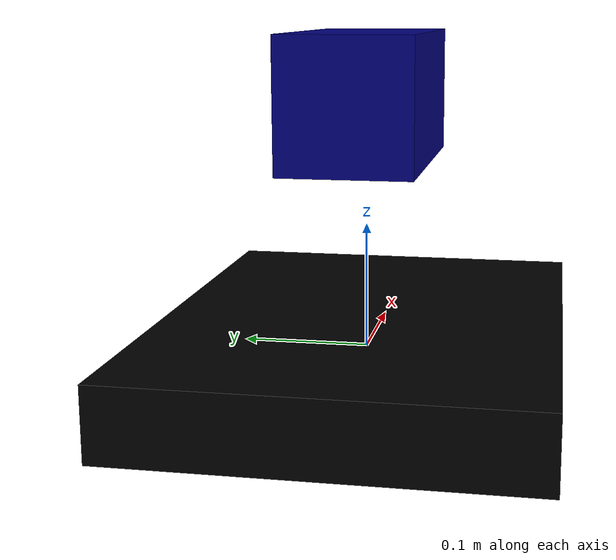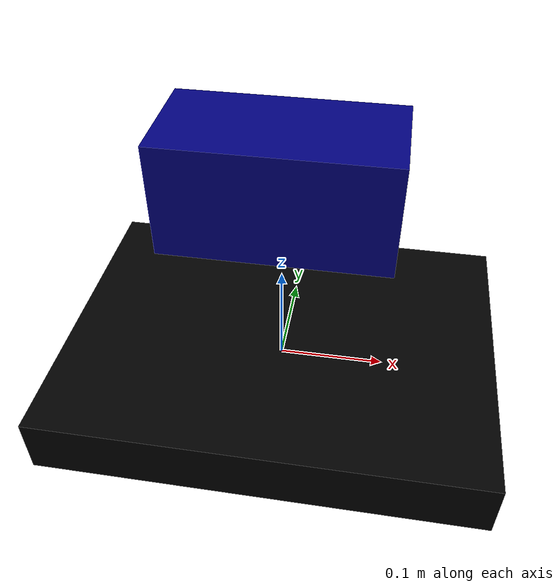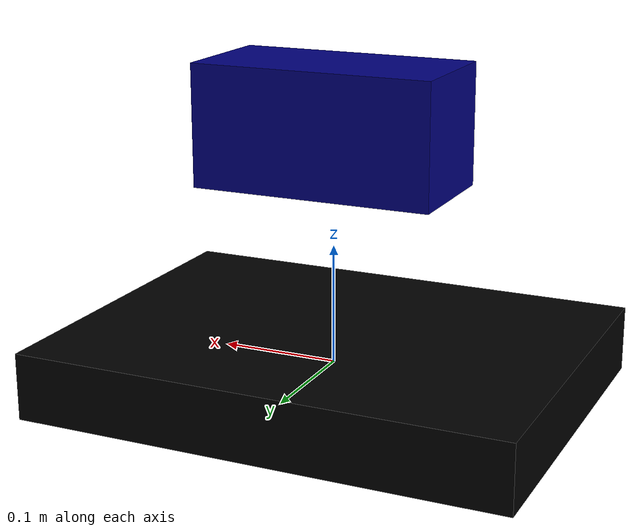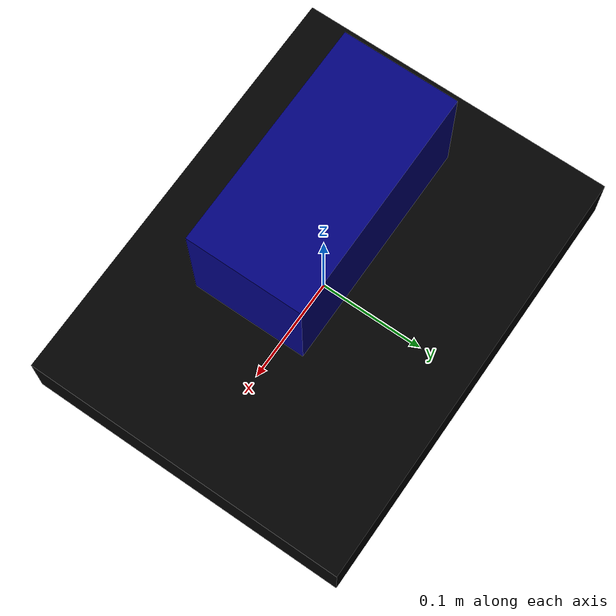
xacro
<?xml version="1.0"?>
<robot name="gobbit"
       xmlns:sensor="http://playerstage.sourceforge.net/gazebo/xmlschema/#sensor"
       xmlns:controller="http://playerstage.sourceforge.net/gazebo/xmlschema/#controller"
       xmlns:interface="http://playerstage.sourceforge.net/gazebo/xmlschema/#interface"
       xmlns:xacro="http://ros.org/wiki/xacro">

  <link name="base_link">
    <visual>
      <geometry>
        <box size="0.2 0.1 0.1"/>
      </geometry>
      <material name="blue">
	<color rgba="0.0 0.0 0.5 1"/>
      </material>
    </visual>
    <collision>
      <geometry>
        <box size="0.41148 0.30988 0.05588"/>
      </geometry>
    </collision>
   <inertial>
      <mass value="20.0"/>
      <inertia ixx="1.0" iyy="1.0" izz="1.0"
               ixy="0" ixz="0" iyz="0"/>
    </inertial>
  </link>

  <joint name="center_joint" type="fixed">
    <axis xyz="0 0 1"/>
    <parent link="device"/>
    <child link="base_link"/>
    <origin rpy="0 0 0" xyz="0 0 0.2"/>
  </joint>

  <link name="device">
    <visual>
      <geometry>
        <box size="0.41148 0.30988 0.05588"/>
      </geometry>
      <material name="black">
	<color rgba="0.0 0.0 0.0 1"/>
      </material>
    </visual>
    <collision>
      <geometry>
        <box size="0.41148 0.30988 0.05588"/>
      </geometry>
    </collision>
   <inertial>
      <mass value="20.0"/>
      <inertia ixx="1.0" iyy="1.0" izz="1.0"
               ixy="0" ixz="0" iyz="0"/>
    </inertial>
  </link>

</robot>
